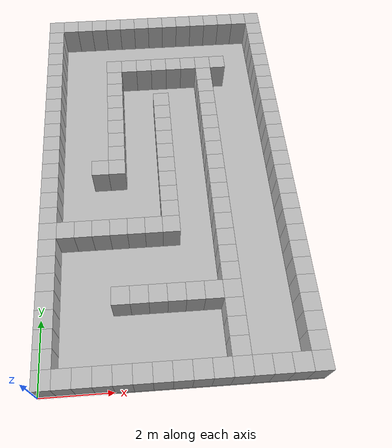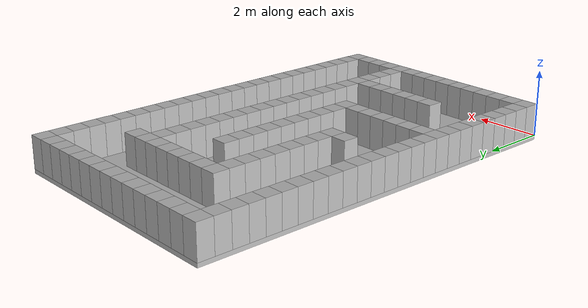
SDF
<sdf version="1.5">
  <model name="map">
    <static>1</static>
    <link name="map">
      <collision name="floor">
        <pose>3.75 6.25 -0.0625 0 0 0</pose>
        <geometry>
          <box>
            <size>7.5 12.5 0.125</size>
          </box>
        </geometry>
      </collision>
      <visual name="floor">
        <pose>3.75 6.25 -0.0625 0 0 0</pose>
        <geometry>
          <box>
            <size>7.5 12.5 0.125</size>
          </box>
        </geometry>
      </visual>
      <collision name="box_0_0">
        <pose>0.25 0.25 0.5 0 0 0</pose>
        <geometry>
          <box>
            <size>0.5 0.5 1.0</size>
          </box>
        </geometry>
      </collision>
      <visual name="box_0_0">
        <pose>0.25 0.25 0.5 0 0 0</pose>
        <geometry>
          <box>
            <size>0.5 0.5 1.0</size>
          </box>
        </geometry>
      </visual>
      <collision name="box_0_1">
        <pose>0.25 0.75 0.5 0 0 0</pose>
        <geometry>
          <box>
            <size>0.5 0.5 1.0</size>
          </box>
        </geometry>
      </collision>
      <visual name="box_0_1">
        <pose>0.25 0.75 0.5 0 0 0</pose>
        <geometry>
          <box>
            <size>0.5 0.5 1.0</size>
          </box>
        </geometry>
      </visual>
      <collision name="box_0_2">
        <pose>0.25 1.25 0.5 0 0 0</pose>
        <geometry>
          <box>
            <size>0.5 0.5 1.0</size>
          </box>
        </geometry>
      </collision>
      <visual name="box_0_2">
        <pose>0.25 1.25 0.5 0 0 0</pose>
        <geometry>
          <box>
            <size>0.5 0.5 1.0</size>
          </box>
        </geometry>
      </visual>
      <collision name="box_0_3">
        <pose>0.25 1.75 0.5 0 0 0</pose>
        <geometry>
          <box>
            <size>0.5 0.5 1.0</size>
          </box>
        </geometry>
      </collision>
      <visual name="box_0_3">
        <pose>0.25 1.75 0.5 0 0 0</pose>
        <geometry>
          <box>
            <size>0.5 0.5 1.0</size>
          </box>
        </geometry>
      </visual>
      <collision name="box_0_4">
        <pose>0.25 2.25 0.5 0 0 0</pose>
        <geometry>
          <box>
            <size>0.5 0.5 1.0</size>
          </box>
        </geometry>
      </collision>
      <visual name="box_0_4">
        <pose>0.25 2.25 0.5 0 0 0</pose>
        <geometry>
          <box>
            <size>0.5 0.5 1.0</size>
          </box>
        </geometry>
      </visual>
      <collision name="box_0_5">
        <pose>0.25 2.75 0.5 0 0 0</pose>
        <geometry>
          <box>
            <size>0.5 0.5 1.0</size>
          </box>
        </geometry>
      </collision>
      <visual name="box_0_5">
        <pose>0.25 2.75 0.5 0 0 0</pose>
        <geometry>
          <box>
            <size>0.5 0.5 1.0</size>
          </box>
        </geometry>
      </visual>
      <collision name="box_0_6">
        <pose>0.25 3.25 0.5 0 0 0</pose>
        <geometry>
          <box>
            <size>0.5 0.5 1.0</size>
          </box>
        </geometry>
      </collision>
      <visual name="box_0_6">
        <pose>0.25 3.25 0.5 0 0 0</pose>
        <geometry>
          <box>
            <size>0.5 0.5 1.0</size>
          </box>
        </geometry>
      </visual>
      <collision name="box_0_7">
        <pose>0.25 3.75 0.5 0 0 0</pose>
        <geometry>
          <box>
            <size>0.5 0.5 1.0</size>
          </box>
        </geometry>
      </collision>
      <visual name="box_0_7">
        <pose>0.25 3.75 0.5 0 0 0</pose>
        <geometry>
          <box>
            <size>0.5 0.5 1.0</size>
          </box>
        </geometry>
      </visual>
      <collision name="box_0_8">
        <pose>0.25 4.25 0.5 0 0 0</pose>
        <geometry>
          <box>
            <size>0.5 0.5 1.0</size>
          </box>
        </geometry>
      </collision>
      <visual name="box_0_8">
        <pose>0.25 4.25 0.5 0 0 0</pose>
        <geometry>
          <box>
            <size>0.5 0.5 1.0</size>
          </box>
        </geometry>
      </visual>
      <collision name="box_0_9">
        <pose>0.25 4.75 0.5 0 0 0</pose>
        <geometry>
          <box>
            <size>0.5 0.5 1.0</size>
          </box>
        </geometry>
      </collision>
      <visual name="box_0_9">
        <pose>0.25 4.75 0.5 0 0 0</pose>
        <geometry>
          <box>
            <size>0.5 0.5 1.0</size>
          </box>
        </geometry>
      </visual>
      <collision name="box_0_10">
        <pose>0.25 5.25 0.5 0 0 0</pose>
        <geometry>
          <box>
            <size>0.5 0.5 1.0</size>
          </box>
        </geometry>
      </collision>
      <visual name="box_0_10">
        <pose>0.25 5.25 0.5 0 0 0</pose>
        <geometry>
          <box>
            <size>0.5 0.5 1.0</size>
          </box>
        </geometry>
      </visual>
      <collision name="box_0_11">
        <pose>0.25 5.75 0.5 0 0 0</pose>
        <geometry>
          <box>
            <size>0.5 0.5 1.0</size>
          </box>
        </geometry>
      </collision>
      <visual name="box_0_11">
        <pose>0.25 5.75 0.5 0 0 0</pose>
        <geometry>
          <box>
            <size>0.5 0.5 1.0</size>
          </box>
        </geometry>
      </visual>
      <collision name="box_0_12">
        <pose>0.25 6.25 0.5 0 0 0</pose>
        <geometry>
          <box>
            <size>0.5 0.5 1.0</size>
          </box>
        </geometry>
      </collision>
      <visual name="box_0_12">
        <pose>0.25 6.25 0.5 0 0 0</pose>
        <geometry>
          <box>
            <size>0.5 0.5 1.0</size>
          </box>
        </geometry>
      </visual>
      <collision name="box_0_13">
        <pose>0.25 6.75 0.5 0 0 0</pose>
        <geometry>
          <box>
            <size>0.5 0.5 1.0</size>
          </box>
        </geometry>
      </collision>
      <visual name="box_0_13">
        <pose>0.25 6.75 0.5 0 0 0</pose>
        <geometry>
          <box>
            <size>0.5 0.5 1.0</size>
          </box>
        </geometry>
      </visual>
      <collision name="box_0_14">
        <pose>0.25 7.25 0.5 0 0 0</pose>
        <geometry>
          <box>
            <size>0.5 0.5 1.0</size>
          </box>
        </geometry>
      </collision>
      <visual name="box_0_14">
        <pose>0.25 7.25 0.5 0 0 0</pose>
        <geometry>
          <box>
            <size>0.5 0.5 1.0</size>
          </box>
        </geometry>
      </visual>
      <collision name="box_0_15">
        <pose>0.25 7.75 0.5 0 0 0</pose>
        <geometry>
          <box>
            <size>0.5 0.5 1.0</size>
          </box>
        </geometry>
      </collision>
      <visual name="box_0_15">
        <pose>0.25 7.75 0.5 0 0 0</pose>
        <geometry>
          <box>
            <size>0.5 0.5 1.0</size>
          </box>
        </geometry>
      </visual>
      <collision name="box_0_16">
        <pose>0.25 8.25 0.5 0 0 0</pose>
        <geometry>
          <box>
            <size>0.5 0.5 1.0</size>
          </box>
        </geometry>
      </collision>
      <visual name="box_0_16">
        <pose>0.25 8.25 0.5 0 0 0</pose>
        <geometry>
          <box>
            <size>0.5 0.5 1.0</size>
          </box>
        </geometry>
      </visual>
      <collision name="box_0_17">
        <pose>0.25 8.75 0.5 0 0 0</pose>
        <geometry>
          <box>
            <size>0.5 0.5 1.0</size>
          </box>
        </geometry>
      </collision>
      <visual name="box_0_17">
        <pose>0.25 8.75 0.5 0 0 0</pose>
        <geometry>
          <box>
            <size>0.5 0.5 1.0</size>
          </box>
        </geometry>
      </visual>
      <collision name="box_0_18">
        <pose>0.25 9.25 0.5 0 0 0</pose>
        <geometry>
          <box>
            <size>0.5 0.5 1.0</size>
          </box>
        </geometry>
      </collision>
      <visual name="box_0_18">
        <pose>0.25 9.25 0.5 0 0 0</pose>
        <geometry>
          <box>
            <size>0.5 0.5 1.0</size>
          </box>
        </geometry>
      </visual>
      <collision name="box_0_19">
        <pose>0.25 9.75 0.5 0 0 0</pose>
        <geometry>
          <box>
            <size>0.5 0.5 1.0</size>
          </box>
        </geometry>
      </collision>
      <visual name="box_0_19">
        <pose>0.25 9.75 0.5 0 0 0</pose>
        <geometry>
          <box>
            <size>0.5 0.5 1.0</size>
          </box>
        </geometry>
      </visual>
      <collision name="box_0_20">
        <pose>0.25 10.25 0.5 0 0 0</pose>
        <geometry>
          <box>
            <size>0.5 0.5 1.0</size>
          </box>
        </geometry>
      </collision>
      <visual name="box_0_20">
        <pose>0.25 10.25 0.5 0 0 0</pose>
        <geometry>
          <box>
            <size>0.5 0.5 1.0</size>
          </box>
        </geometry>
      </visual>
      <collision name="box_0_21">
        <pose>0.25 10.75 0.5 0 0 0</pose>
        <geometry>
          <box>
            <size>0.5 0.5 1.0</size>
          </box>
        </geometry>
      </collision>
      <visual name="box_0_21">
        <pose>0.25 10.75 0.5 0 0 0</pose>
        <geometry>
          <box>
            <size>0.5 0.5 1.0</size>
          </box>
        </geometry>
      </visual>
      <collision name="box_0_22">
        <pose>0.25 11.25 0.5 0 0 0</pose>
        <geometry>
          <box>
            <size>0.5 0.5 1.0</size>
          </box>
        </geometry>
      </collision>
      <visual name="box_0_22">
        <pose>0.25 11.25 0.5 0 0 0</pose>
        <geometry>
          <box>
            <size>0.5 0.5 1.0</size>
          </box>
        </geometry>
      </visual>
      <collision name="box_0_23">
        <pose>0.25 11.75 0.5 0 0 0</pose>
        <geometry>
          <box>
            <size>0.5 0.5 1.0</size>
          </box>
        </geometry>
      </collision>
      <visual name="box_0_23">
        <pose>0.25 11.75 0.5 0 0 0</pose>
        <geometry>
          <box>
            <size>0.5 0.5 1.0</size>
          </box>
        </geometry>
      </visual>
      <collision name="box_0_24">
        <pose>0.25 12.25 0.5 0 0 0</pose>
        <geometry>
          <box>
            <size>0.5 0.5 1.0</size>
          </box>
        </geometry>
      </collision>
      <visual name="box_0_24">
        <pose>0.25 12.25 0.5 0 0 0</pose>
        <geometry>
          <box>
            <size>0.5 0.5 1.0</size>
          </box>
        </geometry>
      </visual>
      <collision name="box_1_0">
        <pose>0.75 0.25 0.5 0 0 0</pose>
        <geometry>
          <box>
            <size>0.5 0.5 1.0</size>
          </box>
        </geometry>
      </collision>
      <visual name="box_1_0">
        <pose>0.75 0.25 0.5 0 0 0</pose>
        <geometry>
          <box>
            <size>0.5 0.5 1.0</size>
          </box>
        </geometry>
      </visual>
      <collision name="box_1_8">
        <pose>0.75 4.25 0.5 0 0 0</pose>
        <geometry>
          <box>
            <size>0.5 0.5 1.0</size>
          </box>
        </geometry>
      </collision>
      <visual name="box_1_8">
        <pose>0.75 4.25 0.5 0 0 0</pose>
        <geometry>
          <box>
            <size>0.5 0.5 1.0</size>
          </box>
        </geometry>
      </visual>
      <collision name="box_1_24">
        <pose>0.75 12.25 0.5 0 0 0</pose>
        <geometry>
          <box>
            <size>0.5 0.5 1.0</size>
          </box>
        </geometry>
      </collision>
      <visual name="box_1_24">
        <pose>0.75 12.25 0.5 0 0 0</pose>
        <geometry>
          <box>
            <size>0.5 0.5 1.0</size>
          </box>
        </geometry>
      </visual>
      <collision name="box_2_0">
        <pose>1.25 0.25 0.5 0 0 0</pose>
        <geometry>
          <box>
            <size>0.5 0.5 1.0</size>
          </box>
        </geometry>
      </collision>
      <visual name="box_2_0">
        <pose>1.25 0.25 0.5 0 0 0</pose>
        <geometry>
          <box>
            <size>0.5 0.5 1.0</size>
          </box>
        </geometry>
      </visual>
      <collision name="box_2_8">
        <pose>1.25 4.25 0.5 0 0 0</pose>
        <geometry>
          <box>
            <size>0.5 0.5 1.0</size>
          </box>
        </geometry>
      </collision>
      <visual name="box_2_8">
        <pose>1.25 4.25 0.5 0 0 0</pose>
        <geometry>
          <box>
            <size>0.5 0.5 1.0</size>
          </box>
        </geometry>
      </visual>
      <collision name="box_2_24">
        <pose>1.25 12.25 0.5 0 0 0</pose>
        <geometry>
          <box>
            <size>0.5 0.5 1.0</size>
          </box>
        </geometry>
      </collision>
      <visual name="box_2_24">
        <pose>1.25 12.25 0.5 0 0 0</pose>
        <geometry>
          <box>
            <size>0.5 0.5 1.0</size>
          </box>
        </geometry>
      </visual>
      <collision name="box_3_0">
        <pose>1.75 0.25 0.5 0 0 0</pose>
        <geometry>
          <box>
            <size>0.5 0.5 1.0</size>
          </box>
        </geometry>
      </collision>
      <visual name="box_3_0">
        <pose>1.75 0.25 0.5 0 0 0</pose>
        <geometry>
          <box>
            <size>0.5 0.5 1.0</size>
          </box>
        </geometry>
      </visual>
      <collision name="box_3_8">
        <pose>1.75 4.25 0.5 0 0 0</pose>
        <geometry>
          <box>
            <size>0.5 0.5 1.0</size>
          </box>
        </geometry>
      </collision>
      <visual name="box_3_8">
        <pose>1.75 4.25 0.5 0 0 0</pose>
        <geometry>
          <box>
            <size>0.5 0.5 1.0</size>
          </box>
        </geometry>
      </visual>
      <collision name="box_3_12">
        <pose>1.75 6.25 0.5 0 0 0</pose>
        <geometry>
          <box>
            <size>0.5 0.5 1.0</size>
          </box>
        </geometry>
      </collision>
      <visual name="box_3_12">
        <pose>1.75 6.25 0.5 0 0 0</pose>
        <geometry>
          <box>
            <size>0.5 0.5 1.0</size>
          </box>
        </geometry>
      </visual>
      <collision name="box_3_24">
        <pose>1.75 12.25 0.5 0 0 0</pose>
        <geometry>
          <box>
            <size>0.5 0.5 1.0</size>
          </box>
        </geometry>
      </collision>
      <visual name="box_3_24">
        <pose>1.75 12.25 0.5 0 0 0</pose>
        <geometry>
          <box>
            <size>0.5 0.5 1.0</size>
          </box>
        </geometry>
      </visual>
      <collision name="box_4_0">
        <pose>2.25 0.25 0.5 0 0 0</pose>
        <geometry>
          <box>
            <size>0.5 0.5 1.0</size>
          </box>
        </geometry>
      </collision>
      <visual name="box_4_0">
        <pose>2.25 0.25 0.5 0 0 0</pose>
        <geometry>
          <box>
            <size>0.5 0.5 1.0</size>
          </box>
        </geometry>
      </visual>
      <collision name="box_4_4">
        <pose>2.25 2.25 0.5 0 0 0</pose>
        <geometry>
          <box>
            <size>0.5 0.5 1.0</size>
          </box>
        </geometry>
      </collision>
      <visual name="box_4_4">
        <pose>2.25 2.25 0.5 0 0 0</pose>
        <geometry>
          <box>
            <size>0.5 0.5 1.0</size>
          </box>
        </geometry>
      </visual>
      <collision name="box_4_8">
        <pose>2.25 4.25 0.5 0 0 0</pose>
        <geometry>
          <box>
            <size>0.5 0.5 1.0</size>
          </box>
        </geometry>
      </collision>
      <visual name="box_4_8">
        <pose>2.25 4.25 0.5 0 0 0</pose>
        <geometry>
          <box>
            <size>0.5 0.5 1.0</size>
          </box>
        </geometry>
      </visual>
      <collision name="box_4_12">
        <pose>2.25 6.25 0.5 0 0 0</pose>
        <geometry>
          <box>
            <size>0.5 0.5 1.0</size>
          </box>
        </geometry>
      </collision>
      <visual name="box_4_12">
        <pose>2.25 6.25 0.5 0 0 0</pose>
        <geometry>
          <box>
            <size>0.5 0.5 1.0</size>
          </box>
        </geometry>
      </visual>
      <collision name="box_4_13">
        <pose>2.25 6.75 0.5 0 0 0</pose>
        <geometry>
          <box>
            <size>0.5 0.5 1.0</size>
          </box>
        </geometry>
      </collision>
      <visual name="box_4_13">
        <pose>2.25 6.75 0.5 0 0 0</pose>
        <geometry>
          <box>
            <size>0.5 0.5 1.0</size>
          </box>
        </geometry>
      </visual>
      <collision name="box_4_14">
        <pose>2.25 7.25 0.5 0 0 0</pose>
        <geometry>
          <box>
            <size>0.5 0.5 1.0</size>
          </box>
        </geometry>
      </collision>
      <visual name="box_4_14">
        <pose>2.25 7.25 0.5 0 0 0</pose>
        <geometry>
          <box>
            <size>0.5 0.5 1.0</size>
          </box>
        </geometry>
      </visual>
      <collision name="box_4_15">
        <pose>2.25 7.75 0.5 0 0 0</pose>
        <geometry>
          <box>
            <size>0.5 0.5 1.0</size>
          </box>
        </geometry>
      </collision>
      <visual name="box_4_15">
        <pose>2.25 7.75 0.5 0 0 0</pose>
        <geometry>
          <box>
            <size>0.5 0.5 1.0</size>
          </box>
        </geometry>
      </visual>
      <collision name="box_4_16">
        <pose>2.25 8.25 0.5 0 0 0</pose>
        <geometry>
          <box>
            <size>0.5 0.5 1.0</size>
          </box>
        </geometry>
      </collision>
      <visual name="box_4_16">
        <pose>2.25 8.25 0.5 0 0 0</pose>
        <geometry>
          <box>
            <size>0.5 0.5 1.0</size>
          </box>
        </geometry>
      </visual>
      <collision name="box_4_17">
        <pose>2.25 8.75 0.5 0 0 0</pose>
        <geometry>
          <box>
            <size>0.5 0.5 1.0</size>
          </box>
        </geometry>
      </collision>
      <visual name="box_4_17">
        <pose>2.25 8.75 0.5 0 0 0</pose>
        <geometry>
          <box>
            <size>0.5 0.5 1.0</size>
          </box>
        </geometry>
      </visual>
      <collision name="box_4_18">
        <pose>2.25 9.25 0.5 0 0 0</pose>
        <geometry>
          <box>
            <size>0.5 0.5 1.0</size>
          </box>
        </geometry>
      </collision>
      <visual name="box_4_18">
        <pose>2.25 9.25 0.5 0 0 0</pose>
        <geometry>
          <box>
            <size>0.5 0.5 1.0</size>
          </box>
        </geometry>
      </visual>
      <collision name="box_4_19">
        <pose>2.25 9.75 0.5 0 0 0</pose>
        <geometry>
          <box>
            <size>0.5 0.5 1.0</size>
          </box>
        </geometry>
      </collision>
      <visual name="box_4_19">
        <pose>2.25 9.75 0.5 0 0 0</pose>
        <geometry>
          <box>
            <size>0.5 0.5 1.0</size>
          </box>
        </geometry>
      </visual>
      <collision name="box_4_20">
        <pose>2.25 10.25 0.5 0 0 0</pose>
        <geometry>
          <box>
            <size>0.5 0.5 1.0</size>
          </box>
        </geometry>
      </collision>
      <visual name="box_4_20">
        <pose>2.25 10.25 0.5 0 0 0</pose>
        <geometry>
          <box>
            <size>0.5 0.5 1.0</size>
          </box>
        </geometry>
      </visual>
      <collision name="box_4_24">
        <pose>2.25 12.25 0.5 0 0 0</pose>
        <geometry>
          <box>
            <size>0.5 0.5 1.0</size>
          </box>
        </geometry>
      </collision>
      <visual name="box_4_24">
        <pose>2.25 12.25 0.5 0 0 0</pose>
        <geometry>
          <box>
            <size>0.5 0.5 1.0</size>
          </box>
        </geometry>
      </visual>
      <collision name="box_5_0">
        <pose>2.75 0.25 0.5 0 0 0</pose>
        <geometry>
          <box>
            <size>0.5 0.5 1.0</size>
          </box>
        </geometry>
      </collision>
      <visual name="box_5_0">
        <pose>2.75 0.25 0.5 0 0 0</pose>
        <geometry>
          <box>
            <size>0.5 0.5 1.0</size>
          </box>
        </geometry>
      </visual>
      <collision name="box_5_4">
        <pose>2.75 2.25 0.5 0 0 0</pose>
        <geometry>
          <box>
            <size>0.5 0.5 1.0</size>
          </box>
        </geometry>
      </collision>
      <visual name="box_5_4">
        <pose>2.75 2.25 0.5 0 0 0</pose>
        <geometry>
          <box>
            <size>0.5 0.5 1.0</size>
          </box>
        </geometry>
      </visual>
      <collision name="box_5_8">
        <pose>2.75 4.25 0.5 0 0 0</pose>
        <geometry>
          <box>
            <size>0.5 0.5 1.0</size>
          </box>
        </geometry>
      </collision>
      <visual name="box_5_8">
        <pose>2.75 4.25 0.5 0 0 0</pose>
        <geometry>
          <box>
            <size>0.5 0.5 1.0</size>
          </box>
        </geometry>
      </visual>
      <collision name="box_5_20">
        <pose>2.75 10.25 0.5 0 0 0</pose>
        <geometry>
          <box>
            <size>0.5 0.5 1.0</size>
          </box>
        </geometry>
      </collision>
      <visual name="box_5_20">
        <pose>2.75 10.25 0.5 0 0 0</pose>
        <geometry>
          <box>
            <size>0.5 0.5 1.0</size>
          </box>
        </geometry>
      </visual>
      <collision name="box_5_24">
        <pose>2.75 12.25 0.5 0 0 0</pose>
        <geometry>
          <box>
            <size>0.5 0.5 1.0</size>
          </box>
        </geometry>
      </collision>
      <visual name="box_5_24">
        <pose>2.75 12.25 0.5 0 0 0</pose>
        <geometry>
          <box>
            <size>0.5 0.5 1.0</size>
          </box>
        </geometry>
      </visual>
      <collision name="box_6_0">
        <pose>3.25 0.25 0.5 0 0 0</pose>
        <geometry>
          <box>
            <size>0.5 0.5 1.0</size>
          </box>
        </geometry>
      </collision>
      <visual name="box_6_0">
        <pose>3.25 0.25 0.5 0 0 0</pose>
        <geometry>
          <box>
            <size>0.5 0.5 1.0</size>
          </box>
        </geometry>
      </visual>
      <collision name="box_6_4">
        <pose>3.25 2.25 0.5 0 0 0</pose>
        <geometry>
          <box>
            <size>0.5 0.5 1.0</size>
          </box>
        </geometry>
      </collision>
      <visual name="box_6_4">
        <pose>3.25 2.25 0.5 0 0 0</pose>
        <geometry>
          <box>
            <size>0.5 0.5 1.0</size>
          </box>
        </geometry>
      </visual>
      <collision name="box_6_8">
        <pose>3.25 4.25 0.5 0 0 0</pose>
        <geometry>
          <box>
            <size>0.5 0.5 1.0</size>
          </box>
        </geometry>
      </collision>
      <visual name="box_6_8">
        <pose>3.25 4.25 0.5 0 0 0</pose>
        <geometry>
          <box>
            <size>0.5 0.5 1.0</size>
          </box>
        </geometry>
      </visual>
      <collision name="box_6_20">
        <pose>3.25 10.25 0.5 0 0 0</pose>
        <geometry>
          <box>
            <size>0.5 0.5 1.0</size>
          </box>
        </geometry>
      </collision>
      <visual name="box_6_20">
        <pose>3.25 10.25 0.5 0 0 0</pose>
        <geometry>
          <box>
            <size>0.5 0.5 1.0</size>
          </box>
        </geometry>
      </visual>
      <collision name="box_6_24">
        <pose>3.25 12.25 0.5 0 0 0</pose>
        <geometry>
          <box>
            <size>0.5 0.5 1.0</size>
          </box>
        </geometry>
      </collision>
      <visual name="box_6_24">
        <pose>3.25 12.25 0.5 0 0 0</pose>
        <geometry>
          <box>
            <size>0.5 0.5 1.0</size>
          </box>
        </geometry>
      </visual>
      <collision name="box_7_0">
        <pose>3.75 0.25 0.5 0 0 0</pose>
        <geometry>
          <box>
            <size>0.5 0.5 1.0</size>
          </box>
        </geometry>
      </collision>
      <visual name="box_7_0">
        <pose>3.75 0.25 0.5 0 0 0</pose>
        <geometry>
          <box>
            <size>0.5 0.5 1.0</size>
          </box>
        </geometry>
      </visual>
      <collision name="box_7_4">
        <pose>3.75 2.25 0.5 0 0 0</pose>
        <geometry>
          <box>
            <size>0.5 0.5 1.0</size>
          </box>
        </geometry>
      </collision>
      <visual name="box_7_4">
        <pose>3.75 2.25 0.5 0 0 0</pose>
        <geometry>
          <box>
            <size>0.5 0.5 1.0</size>
          </box>
        </geometry>
      </visual>
      <collision name="box_7_8">
        <pose>3.75 4.25 0.5 0 0 0</pose>
        <geometry>
          <box>
            <size>0.5 0.5 1.0</size>
          </box>
        </geometry>
      </collision>
      <visual name="box_7_8">
        <pose>3.75 4.25 0.5 0 0 0</pose>
        <geometry>
          <box>
            <size>0.5 0.5 1.0</size>
          </box>
        </geometry>
      </visual>
      <collision name="box_7_9">
        <pose>3.75 4.75 0.5 0 0 0</pose>
        <geometry>
          <box>
            <size>0.5 0.5 1.0</size>
          </box>
        </geometry>
      </collision>
      <visual name="box_7_9">
        <pose>3.75 4.75 0.5 0 0 0</pose>
        <geometry>
          <box>
            <size>0.5 0.5 1.0</size>
          </box>
        </geometry>
      </visual>
      <collision name="box_7_10">
        <pose>3.75 5.25 0.5 0 0 0</pose>
        <geometry>
          <box>
            <size>0.5 0.5 1.0</size>
          </box>
        </geometry>
      </collision>
      <visual name="box_7_10">
        <pose>3.75 5.25 0.5 0 0 0</pose>
        <geometry>
          <box>
            <size>0.5 0.5 1.0</size>
          </box>
        </geometry>
      </visual>
      <collision name="box_7_11">
        <pose>3.75 5.75 0.5 0 0 0</pose>
        <geometry>
          <box>
            <size>0.5 0.5 1.0</size>
          </box>
        </geometry>
      </collision>
      <visual name="box_7_11">
        <pose>3.75 5.75 0.5 0 0 0</pose>
        <geometry>
          <box>
            <size>0.5 0.5 1.0</size>
          </box>
        </geometry>
      </visual>
      <collision name="box_7_12">
        <pose>3.75 6.25 0.5 0 0 0</pose>
        <geometry>
          <box>
            <size>0.5 0.5 1.0</size>
          </box>
        </geometry>
      </collision>
      <visual name="box_7_12">
        <pose>3.75 6.25 0.5 0 0 0</pose>
        <geometry>
          <box>
            <size>0.5 0.5 1.0</size>
          </box>
        </geometry>
      </visual>
      <collision name="box_7_13">
        <pose>3.75 6.75 0.5 0 0 0</pose>
        <geometry>
          <box>
            <size>0.5 0.5 1.0</size>
          </box>
        </geometry>
      </collision>
      <visual name="box_7_13">
        <pose>3.75 6.75 0.5 0 0 0</pose>
        <geometry>
          <box>
            <size>0.5 0.5 1.0</size>
          </box>
        </geometry>
      </visual>
      <collision name="box_7_14">
        <pose>3.75 7.25 0.5 0 0 0</pose>
        <geometry>
          <box>
            <size>0.5 0.5 1.0</size>
          </box>
        </geometry>
      </collision>
      <visual name="box_7_14">
        <pose>3.75 7.25 0.5 0 0 0</pose>
        <geometry>
          <box>
            <size>0.5 0.5 1.0</size>
          </box>
        </geometry>
      </visual>
      <collision name="box_7_15">
        <pose>3.75 7.75 0.5 0 0 0</pose>
        <geometry>
          <box>
            <size>0.5 0.5 1.0</size>
          </box>
        </geometry>
      </collision>
      <visual name="box_7_15">
        <pose>3.75 7.75 0.5 0 0 0</pose>
        <geometry>
          <box>
            <size>0.5 0.5 1.0</size>
          </box>
        </geometry>
      </visual>
      <collision name="box_7_16">
        <pose>3.75 8.25 0.5 0 0 0</pose>
        <geometry>
          <box>
            <size>0.5 0.5 1.0</size>
          </box>
        </geometry>
      </collision>
      <visual name="box_7_16">
        <pose>3.75 8.25 0.5 0 0 0</pose>
        <geometry>
          <box>
            <size>0.5 0.5 1.0</size>
          </box>
        </geometry>
      </visual>
      <collision name="box_7_17">
        <pose>3.75 8.75 0.5 0 0 0</pose>
        <geometry>
          <box>
            <size>0.5 0.5 1.0</size>
          </box>
        </geometry>
      </collision>
      <visual name="box_7_17">
        <pose>3.75 8.75 0.5 0 0 0</pose>
        <geometry>
          <box>
            <size>0.5 0.5 1.0</size>
          </box>
        </geometry>
      </visual>
      <collision name="box_7_20">
        <pose>3.75 10.25 0.5 0 0 0</pose>
        <geometry>
          <box>
            <size>0.5 0.5 1.0</size>
          </box>
        </geometry>
      </collision>
      <visual name="box_7_20">
        <pose>3.75 10.25 0.5 0 0 0</pose>
        <geometry>
          <box>
            <size>0.5 0.5 1.0</size>
          </box>
        </geometry>
      </visual>
      <collision name="box_7_24">
        <pose>3.75 12.25 0.5 0 0 0</pose>
        <geometry>
          <box>
            <size>0.5 0.5 1.0</size>
          </box>
        </geometry>
      </collision>
      <visual name="box_7_24">
        <pose>3.75 12.25 0.5 0 0 0</pose>
        <geometry>
          <box>
            <size>0.5 0.5 1.0</size>
          </box>
        </geometry>
      </visual>
      <collision name="box_8_0">
        <pose>4.25 0.25 0.5 0 0 0</pose>
        <geometry>
          <box>
            <size>0.5 0.5 1.0</size>
          </box>
        </geometry>
      </collision>
      <visual name="box_8_0">
        <pose>4.25 0.25 0.5 0 0 0</pose>
        <geometry>
          <box>
            <size>0.5 0.5 1.0</size>
          </box>
        </geometry>
      </visual>
      <collision name="box_8_4">
        <pose>4.25 2.25 0.5 0 0 0</pose>
        <geometry>
          <box>
            <size>0.5 0.5 1.0</size>
          </box>
        </geometry>
      </collision>
      <visual name="box_8_4">
        <pose>4.25 2.25 0.5 0 0 0</pose>
        <geometry>
          <box>
            <size>0.5 0.5 1.0</size>
          </box>
        </geometry>
      </visual>
      <collision name="box_8_20">
        <pose>4.25 10.25 0.5 0 0 0</pose>
        <geometry>
          <box>
            <size>0.5 0.5 1.0</size>
          </box>
        </geometry>
      </collision>
      <visual name="box_8_20">
        <pose>4.25 10.25 0.5 0 0 0</pose>
        <geometry>
          <box>
            <size>0.5 0.5 1.0</size>
          </box>
        </geometry>
      </visual>
      <collision name="box_8_24">
        <pose>4.25 12.25 0.5 0 0 0</pose>
        <geometry>
          <box>
            <size>0.5 0.5 1.0</size>
          </box>
        </geometry>
      </collision>
      <visual name="box_8_24">
        <pose>4.25 12.25 0.5 0 0 0</pose>
        <geometry>
          <box>
            <size>0.5 0.5 1.0</size>
          </box>
        </geometry>
      </visual>
      <collision name="box_9_0">
        <pose>4.75 0.25 0.5 0 0 0</pose>
        <geometry>
          <box>
            <size>0.5 0.5 1.0</size>
          </box>
        </geometry>
      </collision>
      <visual name="box_9_0">
        <pose>4.75 0.25 0.5 0 0 0</pose>
        <geometry>
          <box>
            <size>0.5 0.5 1.0</size>
          </box>
        </geometry>
      </visual>
      <collision name="box_9_4">
        <pose>4.75 2.25 0.5 0 0 0</pose>
        <geometry>
          <box>
            <size>0.5 0.5 1.0</size>
          </box>
        </geometry>
      </collision>
      <visual name="box_9_4">
        <pose>4.75 2.25 0.5 0 0 0</pose>
        <geometry>
          <box>
            <size>0.5 0.5 1.0</size>
          </box>
        </geometry>
      </visual>
      <collision name="box_9_20">
        <pose>4.75 10.25 0.5 0 0 0</pose>
        <geometry>
          <box>
            <size>0.5 0.5 1.0</size>
          </box>
        </geometry>
      </collision>
      <visual name="box_9_20">
        <pose>4.75 10.25 0.5 0 0 0</pose>
        <geometry>
          <box>
            <size>0.5 0.5 1.0</size>
          </box>
        </geometry>
      </visual>
      <collision name="box_9_24">
        <pose>4.75 12.25 0.5 0 0 0</pose>
        <geometry>
          <box>
            <size>0.5 0.5 1.0</size>
          </box>
        </geometry>
      </collision>
      <visual name="box_9_24">
        <pose>4.75 12.25 0.5 0 0 0</pose>
        <geometry>
          <box>
            <size>0.5 0.5 1.0</size>
          </box>
        </geometry>
      </visual>
      <collision name="box_10_0">
        <pose>5.25 0.25 0.5 0 0 0</pose>
        <geometry>
          <box>
            <size>0.5 0.5 1.0</size>
          </box>
        </geometry>
      </collision>
      <visual name="box_10_0">
        <pose>5.25 0.25 0.5 0 0 0</pose>
        <geometry>
          <box>
            <size>0.5 0.5 1.0</size>
          </box>
        </geometry>
      </visual>
      <collision name="box_10_1">
        <pose>5.25 0.75 0.5 0 0 0</pose>
        <geometry>
          <box>
            <size>0.5 0.5 1.0</size>
          </box>
        </geometry>
      </collision>
      <visual name="box_10_1">
        <pose>5.25 0.75 0.5 0 0 0</pose>
        <geometry>
          <box>
            <size>0.5 0.5 1.0</size>
          </box>
        </geometry>
      </visual>
      <collision name="box_10_2">
        <pose>5.25 1.25 0.5 0 0 0</pose>
        <geometry>
          <box>
            <size>0.5 0.5 1.0</size>
          </box>
        </geometry>
      </collision>
      <visual name="box_10_2">
        <pose>5.25 1.25 0.5 0 0 0</pose>
        <geometry>
          <box>
            <size>0.5 0.5 1.0</size>
          </box>
        </geometry>
      </visual>
      <collision name="box_10_3">
        <pose>5.25 1.75 0.5 0 0 0</pose>
        <geometry>
          <box>
            <size>0.5 0.5 1.0</size>
          </box>
        </geometry>
      </collision>
      <visual name="box_10_3">
        <pose>5.25 1.75 0.5 0 0 0</pose>
        <geometry>
          <box>
            <size>0.5 0.5 1.0</size>
          </box>
        </geometry>
      </visual>
      <collision name="box_10_4">
        <pose>5.25 2.25 0.5 0 0 0</pose>
        <geometry>
          <box>
            <size>0.5 0.5 1.0</size>
          </box>
        </geometry>
      </collision>
      <visual name="box_10_4">
        <pose>5.25 2.25 0.5 0 0 0</pose>
        <geometry>
          <box>
            <size>0.5 0.5 1.0</size>
          </box>
        </geometry>
      </visual>
      <collision name="box_10_5">
        <pose>5.25 2.75 0.5 0 0 0</pose>
        <geometry>
          <box>
            <size>0.5 0.5 1.0</size>
          </box>
        </geometry>
      </collision>
      <visual name="box_10_5">
        <pose>5.25 2.75 0.5 0 0 0</pose>
        <geometry>
          <box>
            <size>0.5 0.5 1.0</size>
          </box>
        </geometry>
      </visual>
      <collision name="box_10_6">
        <pose>5.25 3.25 0.5 0 0 0</pose>
        <geometry>
          <box>
            <size>0.5 0.5 1.0</size>
          </box>
        </geometry>
      </collision>
      <visual name="box_10_6">
        <pose>5.25 3.25 0.5 0 0 0</pose>
        <geometry>
          <box>
            <size>0.5 0.5 1.0</size>
          </box>
        </geometry>
      </visual>
      <collision name="box_10_7">
        <pose>5.25 3.75 0.5 0 0 0</pose>
        <geometry>
          <box>
            <size>0.5 0.5 1.0</size>
          </box>
        </geometry>
      </collision>
      <visual name="box_10_7">
        <pose>5.25 3.75 0.5 0 0 0</pose>
        <geometry>
          <box>
            <size>0.5 0.5 1.0</size>
          </box>
        </geometry>
      </visual>
      <collision name="box_10_8">
        <pose>5.25 4.25 0.5 0 0 0</pose>
        <geometry>
          <box>
            <size>0.5 0.5 1.0</size>
          </box>
        </geometry>
      </collision>
      <visual name="box_10_8">
        <pose>5.25 4.25 0.5 0 0 0</pose>
        <geometry>
          <box>
            <size>0.5 0.5 1.0</size>
          </box>
        </geometry>
      </visual>
      <collision name="box_10_9">
        <pose>5.25 4.75 0.5 0 0 0</pose>
        <geometry>
          <box>
            <size>0.5 0.5 1.0</size>
          </box>
        </geometry>
      </collision>
      <visual name="box_10_9">
        <pose>5.25 4.75 0.5 0 0 0</pose>
        <geometry>
          <box>
            <size>0.5 0.5 1.0</size>
          </box>
        </geometry>
      </visual>
      <collision name="box_10_10">
        <pose>5.25 5.25 0.5 0 0 0</pose>
        <geometry>
          <box>
            <size>0.5 0.5 1.0</size>
          </box>
        </geometry>
      </collision>
      <visual name="box_10_10">
        <pose>5.25 5.25 0.5 0 0 0</pose>
        <geometry>
          <box>
            <size>0.5 0.5 1.0</size>
          </box>
        </geometry>
      </visual>
      <collision name="box_10_11">
        <pose>5.25 5.75 0.5 0 0 0</pose>
        <geometry>
          <box>
            <size>0.5 0.5 1.0</size>
          </box>
        </geometry>
      </collision>
      <visual name="box_10_11">
        <pose>5.25 5.75 0.5 0 0 0</pose>
        <geometry>
          <box>
            <size>0.5 0.5 1.0</size>
          </box>
        </geometry>
      </visual>
      <collision name="box_10_12">
        <pose>5.25 6.25 0.5 0 0 0</pose>
        <geometry>
          <box>
            <size>0.5 0.5 1.0</size>
          </box>
        </geometry>
      </collision>
      <visual name="box_10_12">
        <pose>5.25 6.25 0.5 0 0 0</pose>
        <geometry>
          <box>
            <size>0.5 0.5 1.0</size>
          </box>
        </geometry>
      </visual>
      <collision name="box_10_13">
        <pose>5.25 6.75 0.5 0 0 0</pose>
        <geometry>
          <box>
            <size>0.5 0.5 1.0</size>
          </box>
        </geometry>
      </collision>
      <visual name="box_10_13">
        <pose>5.25 6.75 0.5 0 0 0</pose>
        <geometry>
          <box>
            <size>0.5 0.5 1.0</size>
          </box>
        </geometry>
      </visual>
      <collision name="box_10_14">
        <pose>5.25 7.25 0.5 0 0 0</pose>
        <geometry>
          <box>
            <size>0.5 0.5 1.0</size>
          </box>
        </geometry>
      </collision>
      <visual name="box_10_14">
        <pose>5.25 7.25 0.5 0 0 0</pose>
        <geometry>
          <box>
            <size>0.5 0.5 1.0</size>
          </box>
        </geometry>
      </visual>
      <collision name="box_10_15">
        <pose>5.25 7.75 0.5 0 0 0</pose>
        <geometry>
          <box>
            <size>0.5 0.5 1.0</size>
          </box>
        </geometry>
      </collision>
      <visual name="box_10_15">
        <pose>5.25 7.75 0.5 0 0 0</pose>
        <geometry>
          <box>
            <size>0.5 0.5 1.0</size>
          </box>
        </geometry>
      </visual>
      <collision name="box_10_16">
        <pose>5.25 8.25 0.5 0 0 0</pose>
        <geometry>
          <box>
            <size>0.5 0.5 1.0</size>
          </box>
        </geometry>
      </collision>
      <visual name="box_10_16">
        <pose>5.25 8.25 0.5 0 0 0</pose>
        <geometry>
          <box>
            <size>0.5 0.5 1.0</size>
          </box>
        </geometry>
      </visual>
      <collision name="box_10_17">
        <pose>5.25 8.75 0.5 0 0 0</pose>
        <geometry>
          <box>
            <size>0.5 0.5 1.0</size>
          </box>
        </geometry>
      </collision>
      <visual name="box_10_17">
        <pose>5.25 8.75 0.5 0 0 0</pose>
        <geometry>
          <box>
            <size>0.5 0.5 1.0</size>
          </box>
        </geometry>
      </visual>
      <collision name="box_10_18">
        <pose>5.25 9.25 0.5 0 0 0</pose>
        <geometry>
          <box>
            <size>0.5 0.5 1.0</size>
          </box>
        </geometry>
      </collision>
      <visual name="box_10_18">
        <pose>5.25 9.25 0.5 0 0 0</pose>
        <geometry>
          <box>
            <size>0.5 0.5 1.0</size>
          </box>
        </geometry>
      </visual>
      <collision name="box_10_19">
        <pose>5.25 9.75 0.5 0 0 0</pose>
        <geometry>
          <box>
            <size>0.5 0.5 1.0</size>
          </box>
        </geometry>
      </collision>
      <visual name="box_10_19">
        <pose>5.25 9.75 0.5 0 0 0</pose>
        <geometry>
          <box>
            <size>0.5 0.5 1.0</size>
          </box>
        </geometry>
      </visual>
      <collision name="box_10_20">
        <pose>5.25 10.25 0.5 0 0 0</pose>
        <geometry>
          <box>
            <size>0.5 0.5 1.0</size>
          </box>
        </geometry>
      </collision>
      <visual name="box_10_20">
        <pose>5.25 10.25 0.5 0 0 0</pose>
        <geometry>
          <box>
            <size>0.5 0.5 1.0</size>
          </box>
        </geometry>
      </visual>
      <collision name="box_10_24">
        <pose>5.25 12.25 0.5 0 0 0</pose>
        <geometry>
          <box>
            <size>0.5 0.5 1.0</size>
          </box>
        </geometry>
      </collision>
      <visual name="box_10_24">
        <pose>5.25 12.25 0.5 0 0 0</pose>
        <geometry>
          <box>
            <size>0.5 0.5 1.0</size>
          </box>
        </geometry>
      </visual>
      <collision name="box_11_0">
        <pose>5.75 0.25 0.5 0 0 0</pose>
        <geometry>
          <box>
            <size>0.5 0.5 1.0</size>
          </box>
        </geometry>
      </collision>
      <visual name="box_11_0">
        <pose>5.75 0.25 0.5 0 0 0</pose>
        <geometry>
          <box>
            <size>0.5 0.5 1.0</size>
          </box>
        </geometry>
      </visual>
      <collision name="box_11_20">
        <pose>5.75 10.25 0.5 0 0 0</pose>
        <geometry>
          <box>
            <size>0.5 0.5 1.0</size>
          </box>
        </geometry>
      </collision>
      <visual name="box_11_20">
        <pose>5.75 10.25 0.5 0 0 0</pose>
        <geometry>
          <box>
            <size>0.5 0.5 1.0</size>
          </box>
        </geometry>
      </visual>
      <collision name="box_11_24">
        <pose>5.75 12.25 0.5 0 0 0</pose>
        <geometry>
          <box>
            <size>0.5 0.5 1.0</size>
          </box>
        </geometry>
      </collision>
      <visual name="box_11_24">
        <pose>5.75 12.25 0.5 0 0 0</pose>
        <geometry>
          <box>
            <size>0.5 0.5 1.0</size>
          </box>
        </geometry>
      </visual>
      <collision name="box_12_0">
        <pose>6.25 0.25 0.5 0 0 0</pose>
        <geometry>
          <box>
            <size>0.5 0.5 1.0</size>
          </box>
        </geometry>
      </collision>
      <visual name="box_12_0">
        <pose>6.25 0.25 0.5 0 0 0</pose>
        <geometry>
          <box>
            <size>0.5 0.5 1.0</size>
          </box>
        </geometry>
      </visual>
      <collision name="box_12_24">
        <pose>6.25 12.25 0.5 0 0 0</pose>
        <geometry>
          <box>
            <size>0.5 0.5 1.0</size>
          </box>
        </geometry>
      </collision>
      <visual name="box_12_24">
        <pose>6.25 12.25 0.5 0 0 0</pose>
        <geometry>
          <box>
            <size>0.5 0.5 1.0</size>
          </box>
        </geometry>
      </visual>
      <collision name="box_13_0">
        <pose>6.75 0.25 0.5 0 0 0</pose>
        <geometry>
          <box>
            <size>0.5 0.5 1.0</size>
          </box>
        </geometry>
      </collision>
      <visual name="box_13_0">
        <pose>6.75 0.25 0.5 0 0 0</pose>
        <geometry>
          <box>
            <size>0.5 0.5 1.0</size>
          </box>
        </geometry>
      </visual>
      <collision name="box_13_24">
        <pose>6.75 12.25 0.5 0 0 0</pose>
        <geometry>
          <box>
            <size>0.5 0.5 1.0</size>
          </box>
        </geometry>
      </collision>
      <visual name="box_13_24">
        <pose>6.75 12.25 0.5 0 0 0</pose>
        <geometry>
          <box>
            <size>0.5 0.5 1.0</size>
          </box>
        </geometry>
      </visual>
      <collision name="box_14_0">
        <pose>7.25 0.25 0.5 0 0 0</pose>
        <geometry>
          <box>
            <size>0.5 0.5 1.0</size>
          </box>
        </geometry>
      </collision>
      <visual name="box_14_0">
        <pose>7.25 0.25 0.5 0 0 0</pose>
        <geometry>
          <box>
            <size>0.5 0.5 1.0</size>
          </box>
        </geometry>
      </visual>
      <collision name="box_14_1">
        <pose>7.25 0.75 0.5 0 0 0</pose>
        <geometry>
          <box>
            <size>0.5 0.5 1.0</size>
          </box>
        </geometry>
      </collision>
      <visual name="box_14_1">
        <pose>7.25 0.75 0.5 0 0 0</pose>
        <geometry>
          <box>
            <size>0.5 0.5 1.0</size>
          </box>
        </geometry>
      </visual>
      <collision name="box_14_2">
        <pose>7.25 1.25 0.5 0 0 0</pose>
        <geometry>
          <box>
            <size>0.5 0.5 1.0</size>
          </box>
        </geometry>
      </collision>
      <visual name="box_14_2">
        <pose>7.25 1.25 0.5 0 0 0</pose>
        <geometry>
          <box>
            <size>0.5 0.5 1.0</size>
          </box>
        </geometry>
      </visual>
      <collision name="box_14_3">
        <pose>7.25 1.75 0.5 0 0 0</pose>
        <geometry>
          <box>
            <size>0.5 0.5 1.0</size>
          </box>
        </geometry>
      </collision>
      <visual name="box_14_3">
        <pose>7.25 1.75 0.5 0 0 0</pose>
        <geometry>
          <box>
            <size>0.5 0.5 1.0</size>
          </box>
        </geometry>
      </visual>
      <collision name="box_14_4">
        <pose>7.25 2.25 0.5 0 0 0</pose>
        <geometry>
          <box>
            <size>0.5 0.5 1.0</size>
          </box>
        </geometry>
      </collision>
      <visual name="box_14_4">
        <pose>7.25 2.25 0.5 0 0 0</pose>
        <geometry>
          <box>
            <size>0.5 0.5 1.0</size>
          </box>
        </geometry>
      </visual>
      <collision name="box_14_5">
        <pose>7.25 2.75 0.5 0 0 0</pose>
        <geometry>
          <box>
            <size>0.5 0.5 1.0</size>
          </box>
        </geometry>
      </collision>
      <visual name="box_14_5">
        <pose>7.25 2.75 0.5 0 0 0</pose>
        <geometry>
          <box>
            <size>0.5 0.5 1.0</size>
          </box>
        </geometry>
      </visual>
      <collision name="box_14_6">
        <pose>7.25 3.25 0.5 0 0 0</pose>
        <geometry>
          <box>
            <size>0.5 0.5 1.0</size>
          </box>
        </geometry>
      </collision>
      <visual name="box_14_6">
        <pose>7.25 3.25 0.5 0 0 0</pose>
        <geometry>
          <box>
            <size>0.5 0.5 1.0</size>
          </box>
        </geometry>
      </visual>
      <collision name="box_14_7">
        <pose>7.25 3.75 0.5 0 0 0</pose>
        <geometry>
          <box>
            <size>0.5 0.5 1.0</size>
          </box>
        </geometry>
      </collision>
      <visual name="box_14_7">
        <pose>7.25 3.75 0.5 0 0 0</pose>
        <geometry>
          <box>
            <size>0.5 0.5 1.0</size>
          </box>
        </geometry>
      </visual>
      <collision name="box_14_8">
        <pose>7.25 4.25 0.5 0 0 0</pose>
        <geometry>
          <box>
            <size>0.5 0.5 1.0</size>
          </box>
        </geometry>
      </collision>
      <visual name="box_14_8">
        <pose>7.25 4.25 0.5 0 0 0</pose>
        <geometry>
          <box>
            <size>0.5 0.5 1.0</size>
          </box>
        </geometry>
      </visual>
      <collision name="box_14_9">
        <pose>7.25 4.75 0.5 0 0 0</pose>
        <geometry>
          <box>
            <size>0.5 0.5 1.0</size>
          </box>
        </geometry>
      </collision>
      <visual name="box_14_9">
        <pose>7.25 4.75 0.5 0 0 0</pose>
        <geometry>
          <box>
            <size>0.5 0.5 1.0</size>
          </box>
        </geometry>
      </visual>
      <collision name="box_14_10">
        <pose>7.25 5.25 0.5 0 0 0</pose>
        <geometry>
          <box>
            <size>0.5 0.5 1.0</size>
          </box>
        </geometry>
      </collision>
      <visual name="box_14_10">
        <pose>7.25 5.25 0.5 0 0 0</pose>
        <geometry>
          <box>
            <size>0.5 0.5 1.0</size>
          </box>
        </geometry>
      </visual>
      <collision name="box_14_11">
        <pose>7.25 5.75 0.5 0 0 0</pose>
        <geometry>
          <box>
            <size>0.5 0.5 1.0</size>
          </box>
        </geometry>
      </collision>
      <visual name="box_14_11">
        <pose>7.25 5.75 0.5 0 0 0</pose>
        <geometry>
          <box>
            <size>0.5 0.5 1.0</size>
          </box>
        </geometry>
      </visual>
      <collision name="box_14_12">
        <pose>7.25 6.25 0.5 0 0 0</pose>
        <geometry>
          <box>
            <size>0.5 0.5 1.0</size>
          </box>
        </geometry>
      </collision>
      <visual name="box_14_12">
        <pose>7.25 6.25 0.5 0 0 0</pose>
        <geometry>
          <box>
            <size>0.5 0.5 1.0</size>
          </box>
        </geometry>
      </visual>
      <collision name="box_14_13">
        <pose>7.25 6.75 0.5 0 0 0</pose>
        <geometry>
          <box>
            <size>0.5 0.5 1.0</size>
          </box>
        </geometry>
      </collision>
      <visual name="box_14_13">
        <pose>7.25 6.75 0.5 0 0 0</pose>
        <geometry>
          <box>
            <size>0.5 0.5 1.0</size>
          </box>
        </geometry>
      </visual>
      <collision name="box_14_14">
        <pose>7.25 7.25 0.5 0 0 0</pose>
        <geometry>
          <box>
            <size>0.5 0.5 1.0</size>
          </box>
        </geometry>
      </collision>
      <visual name="box_14_14">
        <pose>7.25 7.25 0.5 0 0 0</pose>
        <geometry>
          <box>
            <size>0.5 0.5 1.0</size>
          </box>
        </geometry>
      </visual>
      <collision name="box_14_15">
        <pose>7.25 7.75 0.5 0 0 0</pose>
        <geometry>
          <box>
            <size>0.5 0.5 1.0</size>
          </box>
        </geometry>
      </collision>
      <visual name="box_14_15">
        <pose>7.25 7.75 0.5 0 0 0</pose>
        <geometry>
          <box>
            <size>0.5 0.5 1.0</size>
          </box>
        </geometry>
      </visual>
      <collision name="box_14_16">
        <pose>7.25 8.25 0.5 0 0 0</pose>
        <geometry>
          <box>
            <size>0.5 0.5 1.0</size>
          </box>
        </geometry>
      </collision>
      <visual name="box_14_16">
        <pose>7.25 8.25 0.5 0 0 0</pose>
        <geometry>
          <box>
            <size>0.5 0.5 1.0</size>
          </box>
        </geometry>
      </visual>
      <collision name="box_14_17">
        <pose>7.25 8.75 0.5 0 0 0</pose>
        <geometry>
          <box>
            <size>0.5 0.5 1.0</size>
          </box>
        </geometry>
      </collision>
      <visual name="box_14_17">
        <pose>7.25 8.75 0.5 0 0 0</pose>
        <geometry>
          <box>
            <size>0.5 0.5 1.0</size>
          </box>
        </geometry>
      </visual>
      <collision name="box_14_18">
        <pose>7.25 9.25 0.5 0 0 0</pose>
        <geometry>
          <box>
            <size>0.5 0.5 1.0</size>
          </box>
        </geometry>
      </collision>
      <visual name="box_14_18">
        <pose>7.25 9.25 0.5 0 0 0</pose>
        <geometry>
          <box>
            <size>0.5 0.5 1.0</size>
          </box>
        </geometry>
      </visual>
      <collision name="box_14_19">
        <pose>7.25 9.75 0.5 0 0 0</pose>
        <geometry>
          <box>
            <size>0.5 0.5 1.0</size>
          </box>
        </geometry>
      </collision>
      <visual name="box_14_19">
        <pose>7.25 9.75 0.5 0 0 0</pose>
        <geometry>
          <box>
            <size>0.5 0.5 1.0</size>
          </box>
        </geometry>
      </visual>
      <collision name="box_14_20">
        <pose>7.25 10.25 0.5 0 0 0</pose>
        <geometry>
          <box>
            <size>0.5 0.5 1.0</size>
          </box>
        </geometry>
      </collision>
      <visual name="box_14_20">
        <pose>7.25 10.25 0.5 0 0 0</pose>
        <geometry>
          <box>
            <size>0.5 0.5 1.0</size>
          </box>
        </geometry>
      </visual>
      <collision name="box_14_21">
        <pose>7.25 10.75 0.5 0 0 0</pose>
        <geometry>
          <box>
            <size>0.5 0.5 1.0</size>
          </box>
        </geometry>
      </collision>
      <visual name="box_14_21">
        <pose>7.25 10.75 0.5 0 0 0</pose>
        <geometry>
          <box>
            <size>0.5 0.5 1.0</size>
          </box>
        </geometry>
      </visual>
      <collision name="box_14_22">
        <pose>7.25 11.25 0.5 0 0 0</pose>
        <geometry>
          <box>
            <size>0.5 0.5 1.0</size>
          </box>
        </geometry>
      </collision>
      <visual name="box_14_22">
        <pose>7.25 11.25 0.5 0 0 0</pose>
        <geometry>
          <box>
            <size>0.5 0.5 1.0</size>
          </box>
        </geometry>
      </visual>
      <collision name="box_14_23">
        <pose>7.25 11.75 0.5 0 0 0</pose>
        <geometry>
          <box>
            <size>0.5 0.5 1.0</size>
          </box>
        </geometry>
      </collision>
      <visual name="box_14_23">
        <pose>7.25 11.75 0.5 0 0 0</pose>
        <geometry>
          <box>
            <size>0.5 0.5 1.0</size>
          </box>
        </geometry>
      </visual>
      <collision name="box_14_24">
        <pose>7.25 12.25 0.5 0 0 0</pose>
        <geometry>
          <box>
            <size>0.5 0.5 1.0</size>
          </box>
        </geometry>
      </collision>
      <visual name="box_14_24">
        <pose>7.25 12.25 0.5 0 0 0</pose>
        <geometry>
          <box>
            <size>0.5 0.5 1.0</size>
          </box>
        </geometry>
      </visual>
    </link>
  </model>
</sdf>
